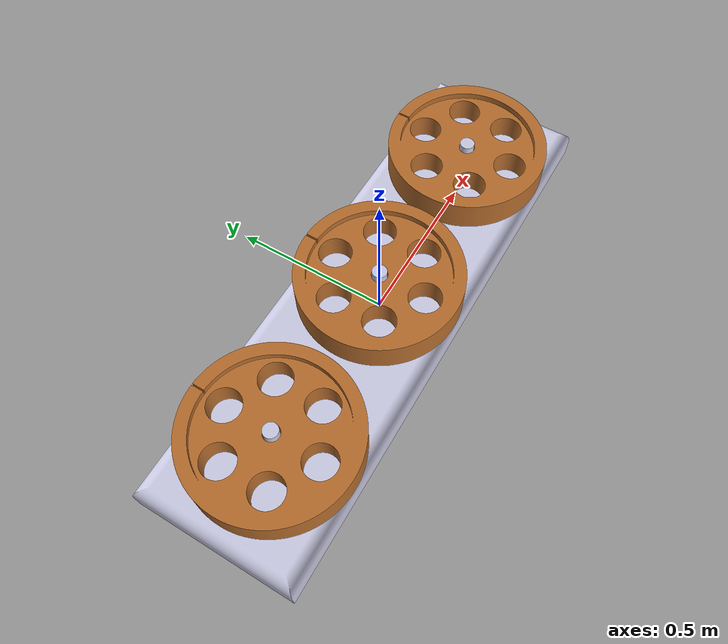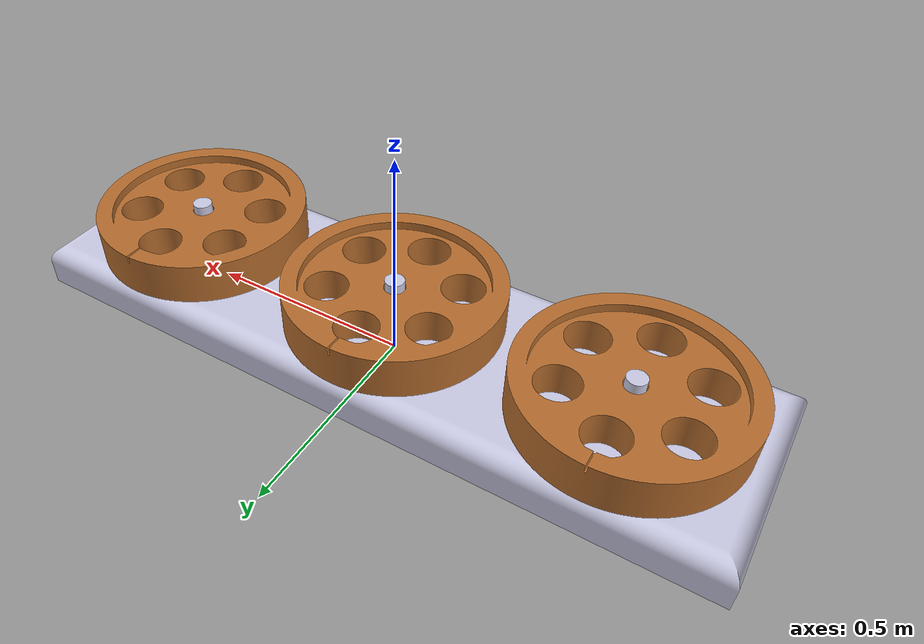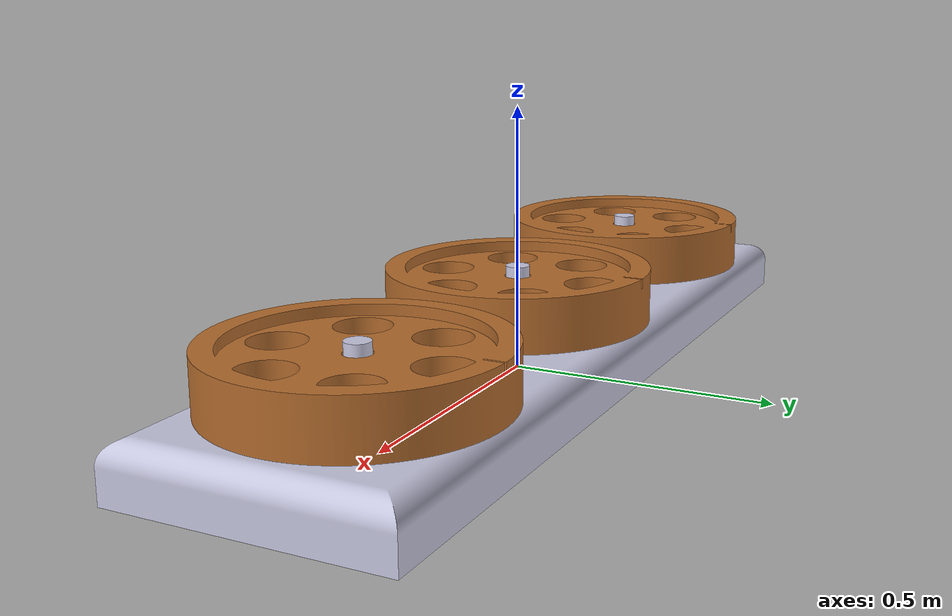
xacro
<?xml version="1.0"?>
<robot name="my_robot" xmlns:xacro="http://www.ros.org/wiki/xacro">
  <xacro:include filename="$(find rcg)/urdf/wheel.urdf.xacro" />
  <xacro:include filename="$(find rcg)/urdf/base.urdf.xacro" />
  <xacro:property name="wheel_radius" value="0.25" />

  <xacro:base />
  <xacro:wheel_velocity prefix="first" parent="base_link" xyz="-0.55 0 0.1" rpy="0 0 0" />
  <xacro:wheel_position prefix="second" parent="base_link" xyz="0 0 0.1" rpy="0 0 0" />
  <xacro:wheel_torque prefix="third" parent="base_link" xyz="0.55 0 0.1" rpy="0 0 0" />

  <!-- Gazebo -->
  <gazebo>
    <plugin name="gazebo_ros_control" filename="libgazebo_ros_control.so">
      <robotNamespace>test_robot</robotNamespace>
    </plugin>
  </gazebo>
</robot>

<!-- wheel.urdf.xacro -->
<robot xmlns:xacro="http://www.ros.org/wiki/xacro">
  <xacro:property name="wheel_radius" value="0.25" />
  <xacro:property name="stl_wheel" value="package://rcg/mesh/wheel.stl"/>
  <xacro:property name="dae_wheel" value="package://rcg/mesh/wheel.dae"/>

  <xacro:macro name="wheel_velocity" params="prefix parent xyz rpy">
    <!-- Joint -->
    <joint name="${prefix}_wheel_joint" type="continuous">
      <parent link="${parent}" />
      <child link="${prefix}_wheel_link" />
      <origin xyz="${xyz}" rpy="${rpy}" />
      <axis xyz="0 0 1" />
    </joint>

    <!-- Link -->
    <link name="${prefix}_wheel_link">
      <collision>
        <geometry>
          <mesh filename="${stl_wheel}"
            scale="0.001 0.001 0.001" />
        </geometry>
      </collision>
      <visual>
        <geometry>
          <mesh filename="${dae_wheel}" />
        </geometry>
      </visual>
      <inertial>
        <origin xyz="0 0 0" />
        <mass value="1" />
        <inertia ixx="1" ixy="-4.2369783e-11" ixz="-5.9381719e-09"
          iyy="1" iyz="-1.4400107e-11"
          izz="1" />
      </inertial>
    </link>

    <!-- Transmission -->
    <transmission name="${prefix}_wheel_trans">
      <type>transmission_interface/SimpleTransmission</type>
      <joint name="${prefix}_wheel_joint">
        <hardwareInterface>hardware_interface/VelocityJointInterface</hardwareInterface>
      </joint>
      <actuator name="${prefix}_wheel_motor">
        <hardwareInterface>hardware_interface/VelocityJointInterface</hardwareInterface>
        <mechanicalReduction>1</mechanicalReduction>
      </actuator>
    </transmission>
  </xacro:macro>

  <xacro:macro name="wheel_position" params="prefix parent xyz rpy">
    <!-- Joint -->
    <joint name="${prefix}_wheel_joint" type="continuous">
      <parent link="${parent}" />
      <child link="${prefix}_wheel_link" />
      <origin xyz="${xyz}" rpy="${rpy}" />
      <axis xyz="0 0 1" />
    </joint>

    <!-- Link -->
    <link name="${prefix}_wheel_link">
      <collision>
        <geometry>
          <mesh filename="${stl_wheel}"
            scale="0.001 0.001 0.001" />
        </geometry>
      </collision>
      <visual>
        <geometry>
          <mesh filename="${dae_wheel}" />
        </geometry>
      </visual>
      <inertial>
        <origin xyz="0 0 0" />
        <mass value="1" />
        <inertia ixx="1" ixy="-4.2369783e-11" ixz="-5.9381719e-09"
          iyy="1" iyz="-1.4400107e-11"
          izz="1" />
      </inertial>
    </link>

    <!-- Transmission -->
    <transmission name="${prefix}_wheel_trans">
      <type>transmission_interface/SimpleTransmission</type>
      <joint name="${prefix}_wheel_joint">
        <hardwareInterface>hardware_interface/PositionJointInterface</hardwareInterface>
      </joint>
      <actuator name="${prefix}_wheel_motor">
        <hardwareInterface>hardware_interface/PositionJointInterface</hardwareInterface>
        <mechanicalReduction>1</mechanicalReduction>
      </actuator>
    </transmission>
  </xacro:macro>

  <xacro:macro name="wheel_torque" params="prefix parent xyz rpy">
    <!-- Joint -->
    <joint name="${prefix}_wheel_joint" type="continuous">
      <parent link="${parent}" />
      <child link="${prefix}_wheel_link" />
      <origin xyz="${xyz}" rpy="${rpy}" />
      <axis xyz="0 0 1" />
    </joint>

    <!-- Link -->
    <link name="${prefix}_wheel_link">
      <collision>
        <geometry>
          <mesh filename="${stl_wheel}"
            scale="0.001 0.001 0.001" />
        </geometry>
      </collision>
      <visual>
        <geometry>
          <mesh filename="${dae_wheel}" />
        </geometry>
      </visual>
      <inertial>
        <origin xyz="0 0 0" />
        <mass value="1" />
        <inertia ixx="1" ixy="-4.2369783e-11" ixz="-5.9381719e-09"
          iyy="1" iyz="-1.4400107e-11"
          izz="1" />
      </inertial>
    </link>

    <!-- Transmission -->
    <transmission name="${prefix}_wheel_trans">
      <type>transmission_interface/SimpleTransmission</type>
      <joint name="${prefix}_wheel_joint">
        <hardwareInterface>hardware_interface/EffortJointInterface</hardwareInterface>
      </joint>
      <actuator name="${prefix}_wheel_motor">
        <hardwareInterface>hardware_interface/EffortJointInterface</hardwareInterface>
        <mechanicalReduction>1</mechanicalReduction>
      </actuator>
    </transmission>
  </xacro:macro>
</robot>

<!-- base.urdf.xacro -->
<robot xmlns:xacro="http://www.ros.org/wiki/xacro">
  <xacro:property name="wheel_radius" value="0.25" />
  <xacro:property name="stl_base" value="package://rcg/mesh/base.stl" />
  <xacro:property name="dae_base" value="package://rcg/mesh/base.dae"/>
  <xacro:macro name="base">
    <link name="base_link">
      <collision>
        <geometry>
          <mesh filename="${stl_base}" scale="0.001 0.001 0.001" />
        </geometry>
      </collision>
      <visual>
        <geometry>
          <mesh filename="${dae_base}" />
        </geometry>
      </visual>
      <inertial>
        <origin xyz="0 0 0" />
        <mass value="100" />
        <inertia ixx="10" ixy="-4.2369783e-11" ixz="-5.9381719e-09"
          iyy="10" iyz="-1.4400107e-11"
          izz="10" />
      </inertial>
    </link>
  </xacro:macro>
</robot>
